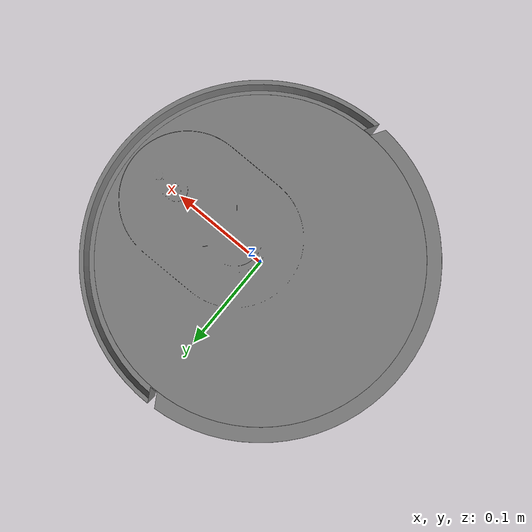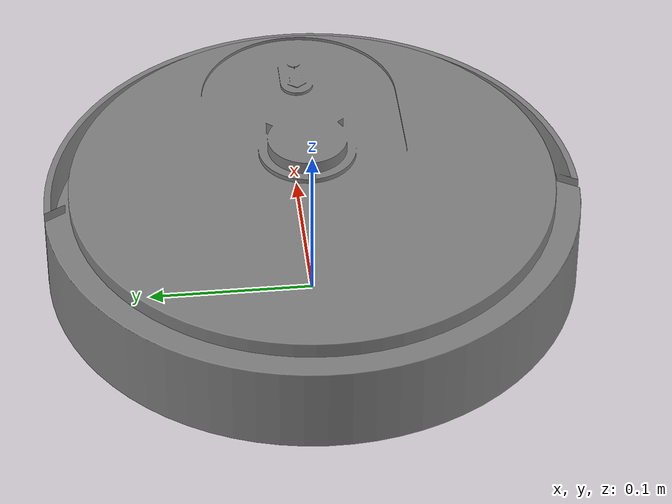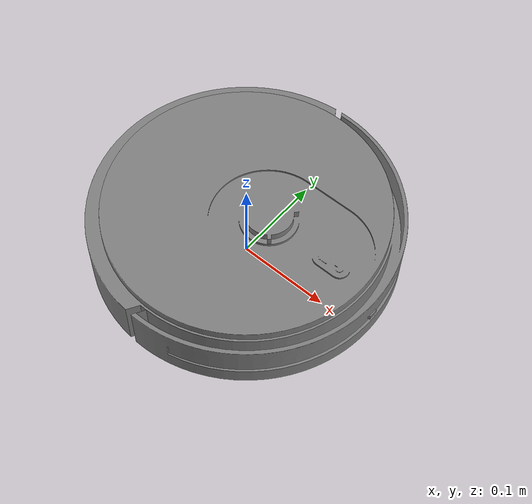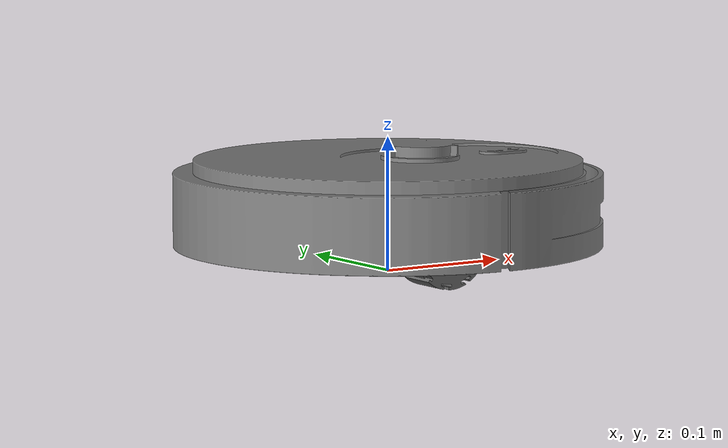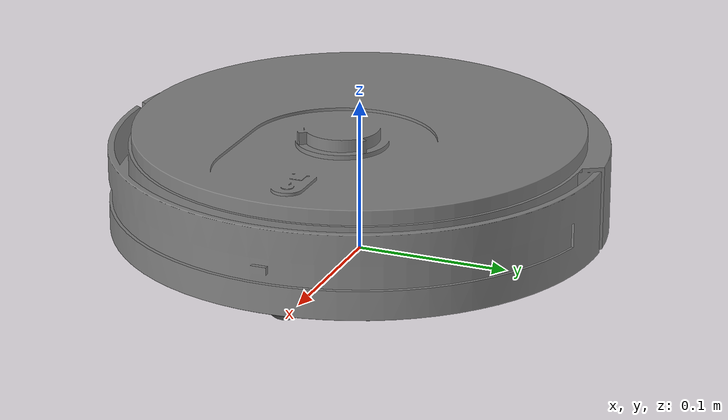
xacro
<?xml version="1.0" ?>
<!-- Generated using onshape-to-robot -->
<!-- Onshape document_id: 6ec665232e6fc828980877e8 -->
<robot xmlns:xacro="http://www.ros.org/wiki/xacro">

<!-- Link base footprint-->
    <link name="base_footprint" />
    <!-- Joint base footprint -->
    <joint name="base_joint" type="fixed">
        <parent link="base_footprint"/>
        <child link="base_link"/>
        <origin xyz="0.0 0.0 0.0194" rpy="0.0 0.0 0.0"/>
    </joint>

<!-- Link base_link -->
  <link name="base_link">
    <inertial>
      <origin xyz="-0.00746509 0 0.0155039" rpy="0 0 0"/>
      <mass value="1.93363"/>
      <inertia ixx="0.0146674" ixy="-0" ixz="0.000285193" iyy="0.0151949" iyz="-0" izz="0.029234"/>
    </inertial>
    <!-- Part base_link -->
    <visual>
      <origin xyz="0 0 0" rpy="-0 -0 -1.5708"/>
      <geometry>
        <mesh filename="package://robot_vacuum_description/assets/base_link.stl"/>
      </geometry>
      <material name="base_link_material">
        <color rgba="0.501961 0.501961 0.501961 1"/>
      </material>
    </visual>
    <collision>
      <origin xyz="0 0 0" rpy="-0 -0 -1.5708"/>
      <geometry>
        <mesh filename="package://robot_vacuum_description/assets/base_link.stl"/>
      </geometry>
    </collision>
  </link>

  <!-- Link roof -->
  <link name="roof_link">
    <inertial>
      <origin xyz="-2e-12 -0.00178866 -0.00507735" rpy="0 0 0"/>
      <mass value="0.683273"/>
      <inertia ixx="0.00350653" ixy="0" ixz="-0" iyy="0.00362483" iyz="-1.91394e-06" izz="0.00711728"/>
    </inertial>
    <!-- Part roof -->
    <visual>
      <origin xyz="-0 0 0" rpy="3.14159 -0 0"/>
      <geometry>
        <mesh filename="package://robot_vacuum_description/assets/roof.stl"/>
      </geometry>
      <material name="roof_link_material">
        <color rgba="0.501961 0.501961 0.501961 1"/>
      </material>
    </visual>
    <collision>
      <origin xyz="-0 0 0" rpy="3.14159 -0 0"/>
      <geometry>
        <mesh filename="package://robot_vacuum_description/assets/roof.stl"/>
      </geometry>
    </collision>
  </link>

   <!-- Joint from base_link to roof -->
  <joint name="roof_joint" type="fixed">
    <origin xyz="-0 0 0.0545" rpy="3.14159 0 1.5708"/>
    <parent link="base_link"/>
    <child link="roof_link"/>
    <axis xyz="0 0 1"/>
    <limit effort="100" velocity="100"/>
  </joint>

  <!-- Link left_wheel_link -->
  <link name="left_wheel_link">
    <inertial>
      <origin xyz="-0 -0 -0.0143302" rpy="0 0 0"/>
      <mass value="0.072608"/>
      <inertia ixx="2.16495e-05" ixy="0" ixz="-0" iyy="2.16495e-05" iyz="0" izz="3.29298e-05"/>
    </inertial>
    <!-- Part left_wheel_link -->
    <visual>
      <origin xyz="0 -0 -0.029" rpy="-0 -0 0"/>
      <geometry>
        <mesh filename="package://robot_vacuum_description/assets/wheel.stl"/>
      </geometry>
      <material name="left_wheel_material">
        <color rgba="0.4 0.4 0.4 1"/>
      </material>
    </visual>
    <collision>
      <origin xyz="0 -0 -0.029" rpy="-0 -0 0"/>
      <geometry>
        <mesh filename="package://robot_vacuum_description/assets/wheel.stl"/>
      </geometry>
    </collision>
  </link>

  <!-- Joint from base_link to left_wheel -->
  <joint name="left_wheel_joint" type="continuous">
    <origin xyz="-0.015 0.075 0.0115" rpy="1.5708 -1.03727 0"/>
    <parent link="base_link"/>
    <child link="left_wheel_link"/>
    <axis xyz="0 0 -1"/>
    <limit effort="100" velocity="100"/>
  </joint>

  <!-- Link right_wheel_link -->
  <link name="right_wheel_link">
    <inertial>
      <origin xyz="-0 -0 -0.0143302" rpy="0 0 0"/>
      <mass value="0.072608"/>
      <inertia ixx="2.16495e-05" ixy="0" ixz="-0" iyy="2.16495e-05" iyz="-0" izz="3.29298e-05"/>
    </inertial>
    <!-- Part right_wheel_link -->
    <visual>
      <origin xyz="-0 -0 -0.029" rpy="0 0 0"/>
      <geometry>
        <mesh filename="package://robot_vacuum_description/assets/wheel.stl"/>
      </geometry>
      <material name="right_wheel_material">
        <color rgba="0.4 0.4 0.4 1"/>
      </material>
    </visual>
    <collision>
      <origin xyz="-0 -0 -0.029" rpy="0 0 0"/>
      <geometry>
        <mesh filename="package://robot_vacuum_description/assets/wheel.stl"/>
      </geometry>
    </collision>
  </link>

  <!-- Joint from base_link to right_wheel -->
  <joint name="right_wheel_joint" type="continuous">
    <origin xyz="-0.015 -0.075 0.0115" rpy="1.5708 1.03727 -3.14159"/>
    <parent link="base_link"/>
    <child link="right_wheel_link"/>
    <axis xyz="0 0 1"/>
    <limit effort="100" velocity="100"/>
  </joint>

  <!-- Link caster_frame -->
  <link name="caster_frame_link">
    <inertial>
      <origin xyz="-0.00286518 -0 -0.0075839" rpy="0 0 0"/>
      <mass value="0.0016661"/>
      <inertia ixx="2.7546e-07" ixy="-0" ixz="-3.0744e-08" iyy="1.47808e-07" iyz="-0" izz="3.16241e-07"/>
    </inertial>
    <!-- Part caster_frame -->
    <visual>
      <origin xyz="0 -0 -0.002" rpy="-0 0 0"/>
      <geometry>
        <mesh filename="package://robot_vacuum_description/assets/caster_frame.stl"/>
      </geometry>
      <material name="caster_frame_link_material">
        <color rgba="0.4 0.4 0.4 1"/>
      </material>
    </visual>
    <collision>
      <origin xyz="0 -0 -0.002" rpy="-0 0 0"/>
      <geometry>
        <mesh filename="package://robot_vacuum_description/assets/caster_frame.stl"/>
      </geometry>
    </collision>
  </link>

  <!-- Link caster_wheel -->
  <link name="caster_wheel_link">
    <inertial>
      <origin xyz="0 -0 -0.0145998" rpy="0 0 0"/>
      <mass value="0.0115684"/>
      <inertia ixx="9.33961e-07" ixy="0" ixz="-0" iyy="9.33961e-07" iyz="-0" izz="1.06054e-06"/>
    </inertial>
    <!-- Part caster_wheel -->
    <visual>
      <origin xyz="0 0 -0.0021" rpy="1.5708 0 -0"/>
      <geometry>
        <mesh filename="package://robot_vacuum_description/assets/caster_wheel.stl"/>
      </geometry>
      <material name="caster_wheel_link_material">
        <color rgba="0.4 0.4 0.4 1"/>
      </material>
    </visual>
    <collision>
      <origin xyz="0 0 -0.0021" rpy="1.5708 0 -0"/>
      <geometry>
        <mesh filename="package://robot_vacuum_description/assets/caster_wheel.stl"/>
      </geometry>
    </collision>
  </link>

  <!-- Joint from caster_frame to caster_wheel -->
  <joint name="caster_wheel_joint" type="continuous">
    <origin xyz="-0.009 0.0145 -0.0192" rpy="-1.5708 -0 -0"/>
    <parent link="caster_frame_link"/>
    <child link="caster_wheel_link"/>
    <axis xyz="0 0 1"/>
    <limit effort="100" velocity="100"/>
  </joint>

  <!-- Joint from base_link to caster_frame -->
  <joint name="caster_frame_joint" type="continuous">
    <origin xyz="0.11 -0 0.014" rpy="0 -0 -3.14159"/>
    <parent link="base_link"/>
    <child link="caster_frame_link"/>
    <axis xyz="0 0 1"/>
    <limit effort="100" velocity="100"/>
  </joint>

</robot>
